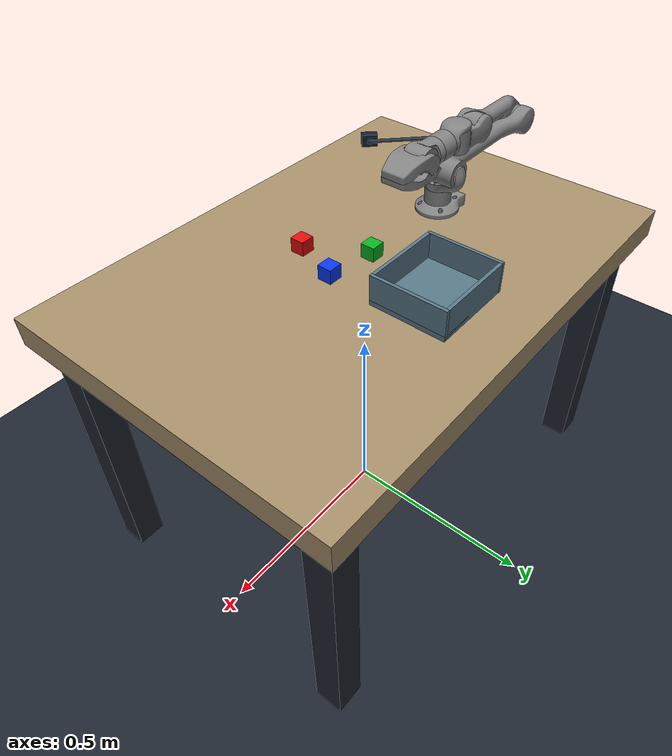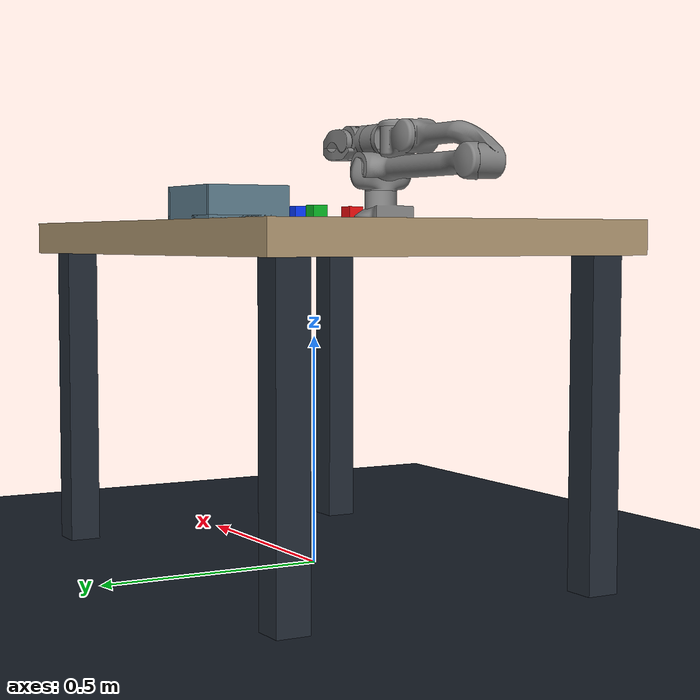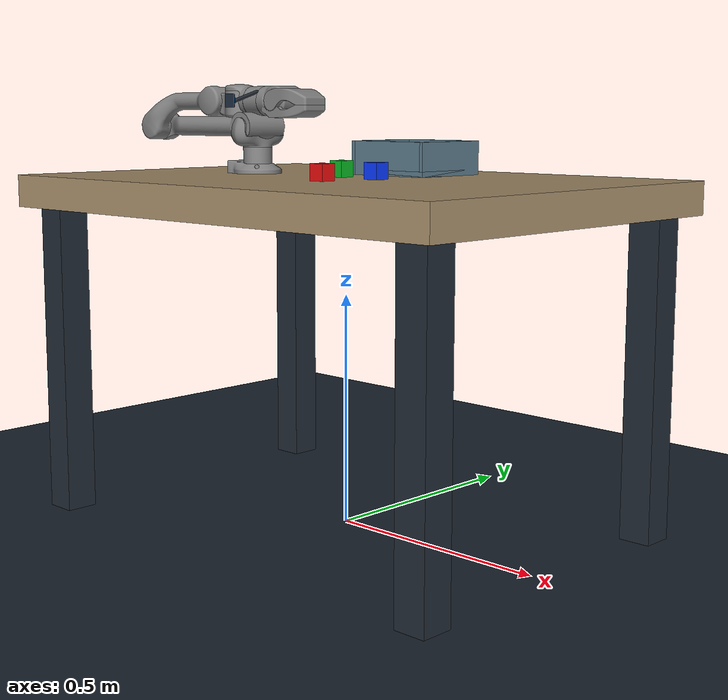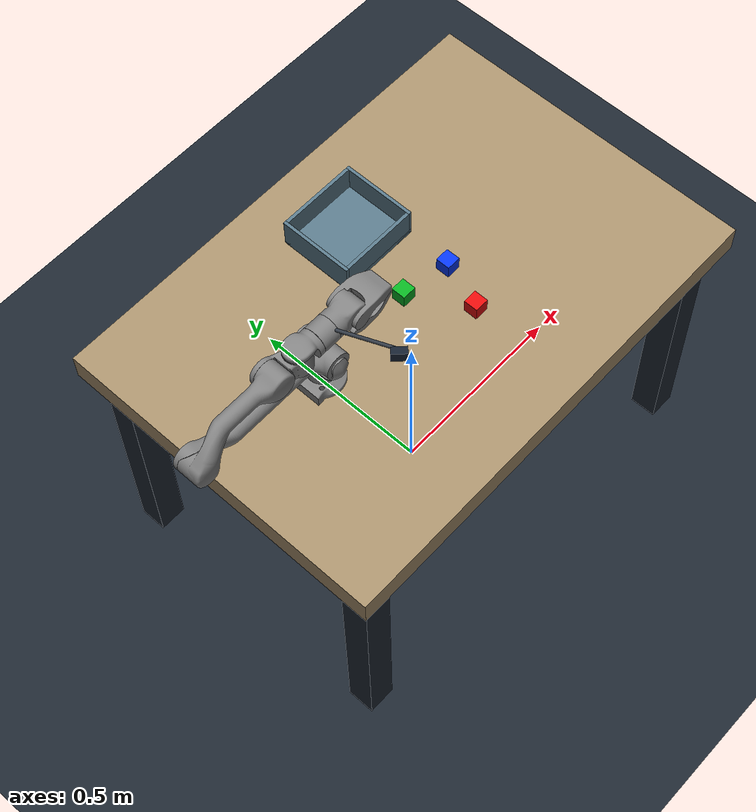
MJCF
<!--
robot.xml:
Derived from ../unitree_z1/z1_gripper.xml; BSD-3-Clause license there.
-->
<mujoco model="Z1 tabletop pick and place">
  <include file="robot.xml"/>
  <option timestep="0.002" gravity="0 0 -9.81" integrator="implicitfast" cone="elliptic" impratio="10"/>
  <visual>
    <global offwidth="1280" offheight="960" azimuth="135" elevation="-28"/>
    <headlight ambient="0.35 0.35 0.35" diffuse="0.7 0.7 0.7" specular="0.2 0.2 0.2"/>
    <map znear="0.003" zfar="8"/>
    <quality shadowsize="2048"/>
  </visual>
  <statistic center="0 0 0.9" extent="1.4"/>
  <default>
    <geom friction="3 0.01 0.001" solref="0.003 1" condim="4"/>
    <default class="block">
      <geom type="box" size="0.0175 0.0175 0.0175" mass="0.055"
            friction="3 0.01 0.001" condim="4" solref="0.003 1"/>
    </default>
    <default class="tray">
      <geom type="box" material="tray_mat" friction="3 0.01 0.001"/>
    </default>
  </default>
  <asset>
    <texture type="skybox" builtin="gradient" rgb1="0.15 0.20 0.28" rgb2="0.035 0.05 0.075" width="256" height="1536"/>
    <texture name="floor_grid" type="2d" builtin="checker" rgb1="0.10 0.13 0.17" rgb2="0.13 0.16 0.20" width="256" height="256"/>
    <material name="floor_mat" texture="floor_grid" texrepeat="4 4" texuniform="true" reflectance="0.05"/>
    <material name="table_mat" rgba="0.64 0.55 0.41 1" shininess="0.15" specular="0.18"/>
    <material name="leg_mat" rgba="0.12 0.15 0.19 1"/>
    <material name="tray_mat" rgba="0.34 0.46 0.52 1" specular="0.2"/>
  </asset>
  <worldbody>
    <light pos="0.2 -0.5 2.5" dir="0 0 -1" diffuse="0.85 0.85 0.85"/>
    <light pos="-0.8 0.5 1.7" dir="0.4 -0.2 -1" diffuse="0.45 0.45 0.5" castshadow="false"/>
    <geom name="floor" type="plane" size="3 3 0.05" material="floor_mat"/>
    <body name="table">
      <geom name="table_top" type="box" pos="0 0 0.715" size="0.60 0.42 0.035" material="table_mat"/>
      <geom type="box" pos="-0.53 -0.35 0.34" size="0.035 0.035 0.34" material="leg_mat"/>
      <geom type="box" pos="0.53 -0.35 0.34" size="0.035 0.035 0.34" material="leg_mat"/>
      <geom type="box" pos="-0.53 0.35 0.34" size="0.035 0.035 0.34" material="leg_mat"/>
      <geom type="box" pos="0.53 0.35 0.34" size="0.035 0.035 0.34" material="leg_mat"/>
    </body>
    <body name="red_cube" pos="0.06 -0.13 0.768">
      <freejoint name="red_cube_free"/>
      <geom name="red_cube_geom" class="block" rgba="0.88 0.045 0.045 1"/>
    </body>
    <body name="blue_cube" pos="0.10 -0.015 0.768">
      <freejoint name="blue_cube_free"/>
      <geom name="blue_cube_geom" class="block" rgba="0.025 0.21 0.95 1"/>
    </body>
    <body name="green_cube" pos="-0.02 0.005 0.768">
      <freejoint name="green_cube_free"/>
      <geom name="green_cube_geom" class="block" rgba="0.035 0.68 0.13 1"/>
    </body>
    <!-- Open container: separate bottom + four collision walls, no top. -->
    <body name="container" pos="0.015 0.20 0.75">
      <geom name="container_bottom" class="tray" pos="0 0 0.006" size="0.103 0.093 0.006"/>
      <geom name="container_left" class="tray" pos="-0.099 0 0.037" size="0.004 0.093 0.037"/>
      <geom name="container_right" class="tray" pos="0.099 0 0.037" size="0.004 0.093 0.037"/>
      <geom name="container_front" class="tray" pos="0 -0.089 0.037" size="0.095 0.004 0.037"/>
      <geom name="container_back" class="tray" pos="0 0.089 0.037" size="0.095 0.004 0.037"/>
      <site name="place_target" pos="0 0 0.10" size="0.006" rgba="1 0.8 0.2 0" group="4"/>
    </body>
    <camera name="overview" pos="0.90 -0.95 1.65"
      xyaxes="0.748259907 0.663405691 0 -0.351537796 0.396501933 0.848060962" fovy="55"/>
    <camera name="top" pos="0.04 0.02 1.85" xyaxes="1 0 0 0 1 0" fovy="58"/>
  </worldbody>
</mujoco>

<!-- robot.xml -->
<mujoco model="z1 tabletop robot">
  <compiler angle="radian" meshdir="../unitree_z1/assets"/>

  <option integrator="implicitfast"/>

  <default>
    <default class="z1">
      <joint damping="1" frictionloss="1"/>
      <general biastype="affine" gainprm="1000" biasprm="0 -1000 -100" forcerange="-30 30"/>
      <default class="visual">
        <geom type="mesh" group="2" contype="0" conaffinity="0"/>
      </default>
      <default class="collision">
        <geom type="cylinder" group="3" mass="0" density="0"/>
        <default class="z1_gripper_stator_collision">
          <geom pos="0.051 0 0" type="mesh"/>
        </default>
        <default class="z1_gripper_stator_pad_collision_1">
          <geom type="box" size="0.014 0.015 0.004" pos="0.186 -0.015 -0.0125"/>
        </default>
        <default class="z1_gripper_stator_pad_collision_2">
          <geom type="box" size="0.014 0.015 0.004" pos="0.186 0.015 -0.0125"/>
        </default>
        <default class="z1_gripper_mover_collision">
          <geom type="mesh"/>
        </default>
        <default class="z1_gripper_mover_pad_collision_1">
          <geom type="box" size="0.014 0.015 0.004" pos="0.086 -0.015 -0.0055"/>
        </default>
        <default class="z1_gripper_mover_pad_collision_2">
          <geom type="box" size="0.014 0.015 0.004" pos="0.086 0.015 -0.0055"/>
        </default>
      </default>
    </default>
  </default>

  <asset>
    <mesh file="z1_Link00.stl"/>
    <mesh file="z1_Link01.stl"/>
    <mesh file="z1_Link02.stl"/>
    <mesh file="z1_Link03.stl"/>
    <mesh file="z1_Link04.stl"/>
    <mesh file="z1_Link05.stl"/>
    <mesh file="z1_Link06.stl"/>
    <mesh file="z1_GripperStator.stl"/>
    <mesh file="z1_GripperStator_col_1.stl"/>
    <mesh file="z1_GripperStator_col_2.stl"/>
    <mesh file="z1_GripperStator_col_3.stl"/>
    <mesh file="z1_GripperStator_col_4.stl"/>
    <mesh file="z1_GripperStator_col_5.stl"/>
    <mesh file="z1_GripperStator_col_6.stl"/>
    <mesh file="z1_GripperMover.stl"/>
    <mesh file="z1_GripperMover_col_1.stl"/>
    <mesh file="z1_GripperMover_col_2.stl"/>
    <mesh file="z1_GripperMover_col_3.stl"/>
    <mesh file="z1_GripperMover_col_4.stl"/>
    <mesh file="z1_GripperMover_col_5.stl"/>
  </asset>

  <worldbody>
    <body name="link00" childclass="z1" pos="-0.28 0 0.75">
      <inertial pos="-0.00334984 -0.00013615 0.0249584" quat="-0.00692194 0.682592 0.00133293 0.730766" mass="0.472475"
        diaginertia="0.000531375 0.000415207 0.000378658"/>
      <geom class="visual" mesh="z1_Link00"/>
      <geom size="0.0325 0.0255" pos="0 0 0.0255" class="collision"/>
      <body name="link01" pos="0 0 0.0585">
        <inertial pos="2.47e-06 -0.00025198 0.0231717" quat="0.708578 0.705633 0.000281462 -0.000355927" mass="0.673326"
          diaginertia="0.00128328 0.000839362 0.000719308"/>
        <joint name="joint1" axis="0 0 1" range="-2.61799 2.61799"/>
        <geom class="visual" mesh="z1_Link01"/>
        <body name="link02" pos="0 0 0.045">
          <inertial pos="-0.110126 0.00240029 0.00158266" quat="0.00748058 0.707092 -0.0114473 0.70699" mass="1.19132"
            diaginertia="0.0246612 0.0243113 0.00100468"/>
          <joint name="joint2" axis="0 1 0" range="0 2.96706" damping="2"/>
          <geom class="visual" mesh="z1_Link02"/>
          <geom size="0.0325 0.051" quat="1 1 0 0" class="collision"/>
          <geom size="0.0225 0.1175" pos="-0.1625 0 0" quat="1 0 1 0" class="collision"/>
          <geom size="0.0325 0.0255" pos="-0.35 0 0" quat="1 1 0 0" class="collision"/>
          <body name="link03" pos="-0.35 0 0">
            <inertial pos="0.106092 -0.00541815 0.0347638" quat="0.540557 0.443575 0.426319 0.573839" mass="0.839409"
              diaginertia="0.00954365 0.00938711 0.000558432"/>
            <joint name="joint3" axis="0 1 0" range="-2.87979 0"/>
            <geom class="visual" mesh="z1_Link03"/>
            <geom size="0.02 0.058" pos="0.128 0 0.055" quat="1 0 1 0" class="collision"/>
            <geom size="0.0325 0.0295" pos="0.2205 0 0.055" quat="0.5 -0.5 0.5 0.5" class="collision"/>
            <body name="link04" pos="0.218 0 0.057">
              <inertial pos="0.0436668 0.00364738 -0.00170192" quat="0.0390835 0.726445 -0.0526787 0.684087"
                mass="0.564046" diaginertia="0.000981656 0.00094053 0.000302655"/>
              <joint name="joint4" axis="0 1 0" range="-1.51844 1.51844"/>
              <geom class="visual" mesh="z1_Link04"/>
              <geom size="0.0325 0.0335" pos="0.072 0 0" class="collision"/>
              <body name="link05" pos="0.07 0 0">
                <inertial pos="0.0312153 0 0.00646316" quat="0.462205 0.535209 0.53785 0.45895" mass="0.389385"
                  diaginertia="0.000558961 0.000547317 0.000167332"/>
                <joint name="joint5" axis="0 0 1" range="-1.3439 1.3439"/>
                <geom class="visual" mesh="z1_Link05"/>
                <body name="link06" pos="0.0492 0 0">
                  <inertial pos="0.0241569 -0.00017355 -0.00143876" quat="0.998779 0.0457735 -0.00663717 0.0173548"
                    mass="0.288758" diaginertia="0.00018333 0.000147464 0.000146786"/>
                  <joint name="joint6" axis="1 0 0" range="-2.79253 2.79253"/>
                  <site name="tcp" pos="0.186 0 0.009" size="0.004" rgba="1 0.7 0.2 0" group="4"/>
                  <!-- DROID-style eye-in-hand: close to the gripper root and outside
                       the jaw volume, looking through the finger gap toward the TCP. -->
                  <geom name="wrist_camera_bracket" class="visual" type="capsule"
                    fromto="0.04 -0.025 0.02 0.10 -0.14 0" size="0.004"
                    rgba="0.20 0.23 0.27 1" mass="0" density="0"/>
                  <body name="wrist_camera_mount" pos="0.10 -0.14 0"
                    quat="0.653281482438 0.653281482438 -0.270598050073 -0.270598050073">
                    <camera name="wrist" fovy="85"/>
                    <geom name="wrist_camera_housing" class="visual" type="box"
                      pos="0 0 0.011" size="0.018 0.014 0.009"
                      rgba="0.08 0.12 0.18 1" mass="0" density="0"/>
                    <geom name="wrist_camera_lens" class="visual" type="cylinder"
                      pos="0 0 0.001" size="0.007 0.001"
                      rgba="0.08 0.45 0.75 1" mass="0" density="0"/>
                  </body>
                  <geom class="visual" mesh="z1_Link06"/>
                  <geom size="0.0325 0.0255" pos="0.0255 0 0" quat="1 0 1 0" class="collision"/>
                  <geom pos="0.051 0 0" type="mesh" mesh="z1_GripperStator" class="visual"/>
                  <geom class="z1_gripper_stator_collision" mesh="z1_GripperStator_col_1"/>
                  <geom class="z1_gripper_stator_collision" mesh="z1_GripperStator_col_2"/>
                  <geom class="z1_gripper_stator_collision" mesh="z1_GripperStator_col_3"/>
                  <geom class="z1_gripper_stator_collision" mesh="z1_GripperStator_col_4"/>
                  <geom class="z1_gripper_stator_collision" mesh="z1_GripperStator_col_5"/>
                  <geom class="z1_gripper_stator_collision" mesh="z1_GripperStator_col_6"/>
                  <geom name="fixed_pad_left" class="z1_gripper_stator_pad_collision_1" friction="3 0.01 0.001"/>
                  <geom name="fixed_pad_right" class="z1_gripper_stator_pad_collision_2" friction="3 0.01 0.001"/>
                  <body name="gripperMover" pos="0.1 0 0">
                    <inertial pos="0.0132063 0.00476708 0.00380534" quat="0.0631093 0.669067 -0.0615783 0.737953"
                      mass="0.276213" diaginertia="0.000359044 0.000270888 0.000172378"/>
                    <joint name="jointGripper" axis="0 1 0" range="-1.51844 0"/>
                    <geom type="mesh" mesh="z1_GripperMover" class="visual"/>
                    <geom class="z1_gripper_mover_collision" mesh="z1_GripperMover_col_1"/>
                    <geom class="z1_gripper_mover_collision" mesh="z1_GripperMover_col_2"/>
                    <geom class="z1_gripper_mover_collision" mesh="z1_GripperMover_col_3"/>
                    <geom class="z1_gripper_mover_collision" mesh="z1_GripperMover_col_4"/>
                    <geom class="z1_gripper_mover_collision" mesh="z1_GripperMover_col_5"/>
                    <geom name="moving_pad_left" class="z1_gripper_mover_pad_collision_1" friction="3 0.01 0.001"/>
                    <geom name="moving_pad_right" class="z1_gripper_mover_pad_collision_2" friction="3 0.01 0.001"/>
                  </body>
                </body>
              </body>
            </body>
          </body>
        </body>
      </body>
    </body>
  </worldbody>

  <actuator>
    <general class="z1" name="motor1" joint="joint1" ctrlrange="-2.61799 2.61799"/>
    <general class="z1" name="motor2" joint="joint2" ctrlrange="0 2.96706" forcerange="-60 60" gainprm="1500"
      biasprm="0 -1500 -150"/>
    <general class="z1" name="motor3" joint="joint3" ctrlrange="-2.87979 0"/>
    <general class="z1" name="motor4" joint="joint4" ctrlrange="-1.51844 1.51844"/>
    <general class="z1" name="motor5" joint="joint5" ctrlrange="-1.3439 1.3439"/>
    <general class="z1" name="motor6" joint="joint6" ctrlrange="-2.79253 2.79253"/>
    <general class="z1" name="motorGripper" joint="jointGripper" ctrlrange="-1.51844 0" forcerange="-2 2"/>
  </actuator>

</mujoco>
